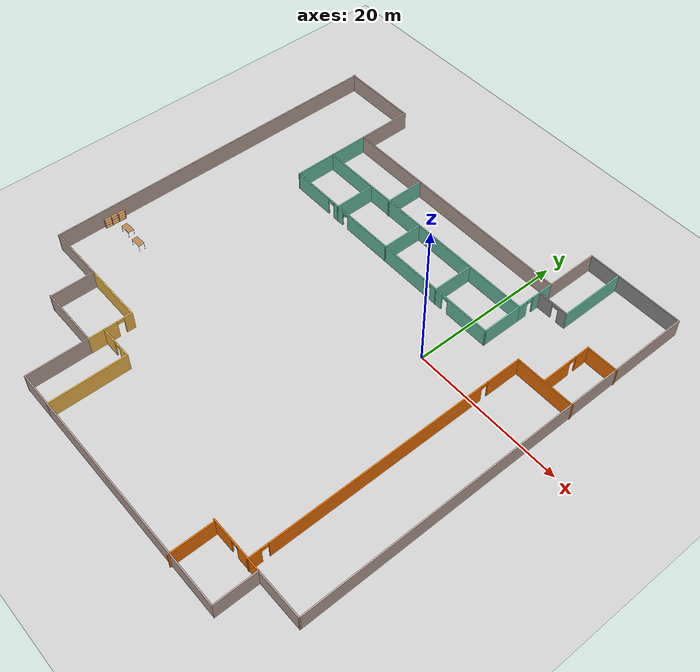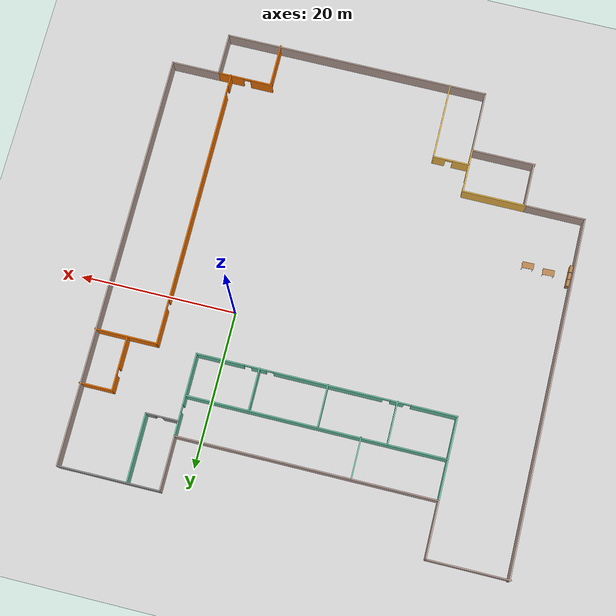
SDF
<sdf version="1.6">
 <world name="default">
  <model name="ground_plane">
   <static>1</static>
   <link name="link">
    <collision name="collision">
     <geometry><plane><normal>0 0 1</normal><size>100 100</size></plane></geometry>
     <surface><friction><ode><mu>100</mu><mu2>50</mu2></ode></friction></surface>
    </collision>
    <visual name="visual">
     <cast_shadows>0</cast_shadows>
     <geometry><plane><normal>0 0 1</normal><size>100 100</size></plane></geometry>
     <material>
      <script><uri>file://media/materials/scripts/gazebo.material</uri><name>Gazebo/Grey</name></script>
     </material>
    </visual>
   </link>
  </model>
  <model name="Building2">
   <pose>-12.0245 -5.6241 0 0 -0 0</pose>
   <link name="Wall_100">
    <collision name="Wall_100_Collision">
     <geometry><box><size>8.23315 0.15 2.5</size></box></geometry>
     <pose>0 0 1.25 0 -0 0</pose>
    </collision>
    <visual name="Wall_100_Visual">
     <pose>0 0 1.25 0 -0 0</pose>
     <geometry><box><size>8.23315 0.15 2.5</size></box></geometry>
     <material>
      <script><uri>file://media/materials/scripts/gazebo.material</uri><name>Gazebo/Grey</name></script>
      <ambient>0.760784 0.662745 0.627451 1</ambient>
     </material>
     <meta><layer>0</layer></meta>
    </visual>
    <pose>-16.2724 -21.6991 0 0 -0 3.14159</pose>
   </link>
   <link name="Wall_101">
    <collision name="Wall_101_Collision">
     <geometry><box><size>5.75 0.15 2.5</size></box></geometry>
     <pose>0 0 1.25 0 -0 0</pose>
    </collision>
    <visual name="Wall_101_Visual">
     <pose>0 0 1.25 0 -0 0</pose>
     <geometry><box><size>5.75 0.15 2.5</size></box></geometry>
     <material>
      <script><uri>file://media/materials/scripts/gazebo.material</uri><name>Gazebo/Grey</name></script>
      <ambient>0.760784 0.662745 0.627451 1</ambient>
     </material>
     <meta><layer>0</layer></meta>
    </visual>
    <pose>-20.2209 -18.8991 0 0 -0 1.5708</pose>
   </link>
   <link name="Wall_102">
    <collision name="Wall_102_Collision">
     <geometry><box><size>7.76685 0.15 2.5</size></box></geometry>
     <pose>0 0 1.25 0 -0 0</pose>
    </collision>
    <visual name="Wall_102_Visual">
     <pose>0 0 1.25 0 -0 0</pose>
     <geometry><box><size>7.76685 0.15 2.5</size></box></geometry>
     <material>
      <script><uri>file://media/materials/scripts/gazebo.material</uri><name>Gazebo/Grey</name></script>
      <ambient>0.760784 0.662745 0.627451 1</ambient>
     </material>
     <meta><layer>0</layer></meta>
    </visual>
    <pose>-24.1224 -16.0991 0 0 -0 3.14159</pose>
   </link>
   <link name="Wall_103">
    <collision name="Wall_103_Collision">
     <geometry><box><size>46 0.15 2.5</size></box></geometry>
     <pose>0 0 1.25 0 -0 0</pose>
    </collision>
    <visual name="Wall_103_Visual">
     <pose>0 0 1.25 0 -0 0</pose>
     <geometry><box><size>46 0.15 2.5</size></box></geometry>
     <material>
      <script><uri>file://media/materials/scripts/gazebo.material</uri><name>Gazebo/Grey</name></script>
      <ambient>0.760784 0.662745 0.627451 1</ambient>
     </material>
     <meta><layer>0</layer></meta>
    </visual>
    <pose>-27.9308 6.82589 0 0 -0 1.5708</pose>
   </link>
   <link name="Wall_105">
    <collision name="Wall_105_Collision">
     <geometry><box><size>5.25 0.15 2.5</size></box></geometry>
     <pose>0 0 1.25 0 -0 0</pose>
    </collision>
    <visual name="Wall_105_Visual">
     <pose>0 0 1.25 0 -0 0</pose>
     <geometry><box><size>5.25 0.15 2.5</size></box></geometry>
     <material>
      <script><uri>file://media/materials/scripts/gazebo.material</uri><name>Gazebo/Grey</name></script>
      <ambient>0.435294 0.796078 0.67451 1</ambient>
     </material>
     <meta><layer>0</layer></meta>
    </visual>
    <pose>-17.7308 20.0009 0 0 0 -1.5708</pose>
   </link>
   <link name="Wall_106">
    <collision name="Wall_106_Collision">
     <geometry><box><size>33 0.15 2.5</size></box></geometry>
     <pose>0 0 1.25 0 -0 0</pose>
    </collision>
    <visual name="Wall_106_Visual">
     <pose>0 0 1.25 0 -0 0</pose>
     <geometry><box><size>33 0.15 2.5</size></box></geometry>
     <material>
      <script><uri>file://media/materials/scripts/gazebo.material</uri><name>Gazebo/Grey</name></script>
      <ambient>0.435294 0.796078 0.67451 1</ambient>
     </material>
     <meta><layer>0</layer></meta>
    </visual>
    <pose>-1.30583 17.4509 0 0 -0 0</pose>
   </link>
   <link name="Wall_107">
    <pose>15.1192 20.0009 0 0 -0 1.5708</pose>
    <visual name="Wall_107_Visual_0">
     <pose>-1.98924 0 1.25 0 -0 0</pose>
     <geometry><box><size>1.27152 0.15 2.5</size></box></geometry>
     <material>
      <script><uri>file://media/materials/scripts/gazebo.material</uri><name>Gazebo/Grey</name></script>
      <ambient>0.435294 0.796078 0.67451 1</ambient>
     </material>
     <meta><layer>0</layer></meta>
    </visual>
    <collision name="Wall_107_Collision_0">
     <geometry><box><size>1.27152 0.15 2.5</size></box></geometry>
     <pose>-1.98924 0 1.25 0 -0 0</pose>
    </collision>
    <visual name="Wall_107_Visual_1">
     <pose>1.08576 0 1.25 0 -0 0</pose>
     <geometry><box><size>3.07848 0.15 2.5</size></box></geometry>
     <material>
      <script><uri>file://media/materials/scripts/gazebo.material</uri><name>Gazebo/Grey</name></script>
      <ambient>0.435294 0.796078 0.67451 1</ambient>
     </material>
     <meta><layer>0</layer></meta>
    </visual>
    <collision name="Wall_107_Collision_1">
     <geometry><box><size>3.07848 0.15 2.5</size></box></geometry>
     <pose>1.08576 0 1.25 0 -0 0</pose>
    </collision>
    <visual name="Wall_107_Visual_2">
     <pose>-0.903477 0 2.25 0 -0 0</pose>
     <geometry><box><size>0.9 0.15 0.5</size></box></geometry>
     <material>
      <script><uri>file://media/materials/scripts/gazebo.material</uri><name>Gazebo/Grey</name></script>
      <ambient>0.435294 0.796078 0.67451 1</ambient>
     </material>
     <meta><layer>0</layer></meta>
    </visual>
    <collision name="Wall_107_Collision_2">
     <geometry><box><size>0.9 0.15 0.5</size></box></geometry>
     <pose>-0.903477 0 2.25 0 -0 0</pose>
    </collision>
   </link>
   <link name="Wall_109">
    <collision name="Wall_109_Collision">
     <geometry><box><size>5.25 0.15 2.5</size></box></geometry>
     <pose>0 0 1.25 0 -0 0</pose>
    </collision>
    <visual name="Wall_109_Visual">
     <pose>0 0 1.25 0 -0 0</pose>
     <geometry><box><size>5.25 0.15 2.5</size></box></geometry>
     <material>
      <script><uri>file://media/materials/scripts/gazebo.material</uri><name>Gazebo/Grey</name></script>
      <ambient>0.435294 0.796078 0.67451 1</ambient>
     </material>
     <meta><layer>0</layer></meta>
    </visual>
    <pose>-6.91313 19.8858 0 0 -0 1.5708</pose>
   </link>
   <link name="Wall_111">
    <collision name="Wall_111_Collision">
     <geometry><box><size>5.5 0.15 2.5</size></box></geometry>
     <pose>0 0 1.25 0 -0 0</pose>
    </collision>
    <visual name="Wall_111_Visual">
     <pose>0 0 1.25 0 -0 0</pose>
     <geometry><box><size>5.5 0.15 2.5</size></box></geometry>
     <material>
      <script><uri>file://media/materials/scripts/gazebo.material</uri><name>Gazebo/Grey</name></script>
      <ambient>0.435294 0.796078 0.67451 1</ambient>
     </material>
     <meta><layer>0</layer></meta>
    </visual>
    <pose>-17.7308 14.7759 0 0 0 -1.5708</pose>
   </link>
   <link name="Wall_112">
    <pose>-1.30583 12.1009 0 0 -0 0</pose>
    <visual name="Wall_112_Visual_0">
     <pose>-13.571 0 1.25 0 -0 0</pose>
     <geometry><box><size>5.8581 0.15 2.5</size></box></geometry>
     <material>
      <script><uri>file://media/materials/scripts/gazebo.material</uri><name>Gazebo/Grey</name></script>
      <ambient>0.435294 0.796078 0.67451 1</ambient>
     </material>
     <meta><layer>0</layer></meta>
    </visual>
    <collision name="Wall_112_Collision_0">
     <geometry><box><size>5.8581 0.15 2.5</size></box></geometry>
     <pose>-13.571 0 1.25 0 -0 0</pose>
    </collision>
    <visual name="Wall_112_Visual_1">
     <pose>-8.87439 0 1.25 0 -0 0</pose>
     <geometry><box><size>1.73501 0.15 2.5</size></box></geometry>
     <material>
      <script><uri>file://media/materials/scripts/gazebo.material</uri><name>Gazebo/Grey</name></script>
      <ambient>0.435294 0.796078 0.67451 1</ambient>
     </material>
     <meta><layer>0</layer></meta>
    </visual>
    <collision name="Wall_112_Collision_1">
     <geometry><box><size>1.73501 0.15 2.5</size></box></geometry>
     <pose>-8.87439 0 1.25 0 -0 0</pose>
    </collision>
    <visual name="Wall_112_Visual_2">
     <pose>-0.216496 0 1.25 0 -0 0</pose>
     <geometry><box><size>13.7808 0.15 2.5</size></box></geometry>
     <material>
      <script><uri>file://media/materials/scripts/gazebo.material</uri><name>Gazebo/Grey</name></script>
      <ambient>0.435294 0.796078 0.67451 1</ambient>
     </material>
     <meta><layer>0</layer></meta>
    </visual>
    <collision name="Wall_112_Collision_2">
     <geometry><box><size>13.7808 0.15 2.5</size></box></geometry>
     <pose>-0.216496 0 1.25 0 -0 0</pose>
    </collision>
    <visual name="Wall_112_Visual_3">
     <pose>8.53551 0 1.25 0 -0 0</pose>
     <geometry><box><size>1.92323 0.15 2.5</size></box></geometry>
     <material>
      <script><uri>file://media/materials/scripts/gazebo.material</uri><name>Gazebo/Grey</name></script>
      <ambient>0.435294 0.796078 0.67451 1</ambient>
     </material>
     <meta><layer>0</layer></meta>
    </visual>
    <collision name="Wall_112_Collision_3">
     <geometry><box><size>1.92323 0.15 2.5</size></box></geometry>
     <pose>8.53551 0 1.25 0 -0 0</pose>
    </collision>
    <visual name="Wall_112_Visual_4">
     <pose>13.4486 0 1.25 0 -0 0</pose>
     <geometry><box><size>6.10288 0.15 2.5</size></box></geometry>
     <material>
      <script><uri>file://media/materials/scripts/gazebo.material</uri><name>Gazebo/Grey</name></script>
      <ambient>0.435294 0.796078 0.67451 1</ambient>
     </material>
     <meta><layer>0</layer></meta>
    </visual>
    <collision name="Wall_112_Collision_4">
     <geometry><box><size>6.10288 0.15 2.5</size></box></geometry>
     <pose>13.4486 0 1.25 0 -0 0</pose>
    </collision>
    <visual name="Wall_112_Visual_5">
     <pose>-10.1919 0 2.25 0 -0 0</pose>
     <geometry><box><size>0.9 0.15 0.5</size></box></geometry>
     <material>
      <script><uri>file://media/materials/scripts/gazebo.material</uri><name>Gazebo/Grey</name></script>
      <ambient>0.435294 0.796078 0.67451 1</ambient>
     </material>
     <meta><layer>0</layer></meta>
    </visual>
    <collision name="Wall_112_Collision_5">
     <geometry><box><size>0.9 0.15 0.5</size></box></geometry>
     <pose>-10.1919 0 2.25 0 -0 0</pose>
    </collision>
    <visual name="Wall_112_Visual_6">
     <pose>-7.55689 0 2.25 0 -0 0</pose>
     <geometry><box><size>0.9 0.15 0.5</size></box></geometry>
     <material>
      <script><uri>file://media/materials/scripts/gazebo.material</uri><name>Gazebo/Grey</name></script>
      <ambient>0.435294 0.796078 0.67451 1</ambient>
     </material>
     <meta><layer>0</layer></meta>
    </visual>
    <collision name="Wall_112_Collision_6">
     <geometry><box><size>0.9 0.15 0.5</size></box></geometry>
     <pose>-7.55689 0 2.25 0 -0 0</pose>
    </collision>
    <visual name="Wall_112_Visual_7">
     <pose>7.1239 0 2.25 0 -0 0</pose>
     <geometry><box><size>0.9 0.15 0.5</size></box></geometry>
     <material>
      <script><uri>file://media/materials/scripts/gazebo.material</uri><name>Gazebo/Grey</name></script>
      <ambient>0.435294 0.796078 0.67451 1</ambient>
     </material>
     <meta><layer>0</layer></meta>
    </visual>
    <collision name="Wall_112_Collision_7">
     <geometry><box><size>0.9 0.15 0.5</size></box></geometry>
     <pose>7.1239 0 2.25 0 -0 0</pose>
    </collision>
    <visual name="Wall_112_Visual_8">
     <pose>9.94712 0 2.25 0 -0 0</pose>
     <geometry><box><size>0.9 0.15 0.5</size></box></geometry>
     <material>
      <script><uri>file://media/materials/scripts/gazebo.material</uri><name>Gazebo/Grey</name></script>
      <ambient>0.435294 0.796078 0.67451 1</ambient>
     </material>
     <meta><layer>0</layer></meta>
    </visual>
    <collision name="Wall_112_Collision_8">
     <geometry><box><size>0.9 0.15 0.5</size></box></geometry>
     <pose>9.94712 0 2.25 0 -0 0</pose>
    </collision>
   </link>
   <link name="Wall_113">
    <collision name="Wall_113_Collision">
     <geometry><box><size>5.5 0.15 2.5</size></box></geometry>
     <pose>0 0 1.25 0 -0 0</pose>
    </collision>
    <visual name="Wall_113_Visual">
     <pose>0 0 1.25 0 -0 0</pose>
     <geometry><box><size>5.5 0.15 2.5</size></box></geometry>
     <material>
      <script><uri>file://media/materials/scripts/gazebo.material</uri><name>Gazebo/Grey</name></script>
      <ambient>0.435294 0.796078 0.67451 1</ambient>
     </material>
     <meta><layer>0</layer></meta>
    </visual>
    <pose>15.1192 14.7759 0 0 -0 1.5708</pose>
   </link>
   <link name="Wall_116">
    <collision name="Wall_116_Collision">
     <geometry><box><size>5.5 0.15 2.5</size></box></geometry>
     <pose>0 0 1.25 0 -0 0</pose>
    </collision>
    <visual name="Wall_116_Visual">
     <pose>0 0 1.25 0 -0 0</pose>
     <geometry><box><size>5.5 0.15 2.5</size></box></geometry>
     <material>
      <script><uri>file://media/materials/scripts/gazebo.material</uri><name>Gazebo/Grey</name></script>
      <ambient>0.435294 0.796078 0.67451 1</ambient>
     </material>
     <meta><layer>0</layer></meta>
    </visual>
    <pose>7.15837 14.734 0 0 -0 1.5708</pose>
   </link>
   <link name="Wall_118">
    <collision name="Wall_118_Collision">
     <geometry><box><size>5.5 0.15 2.5</size></box></geometry>
     <pose>0 0 1.25 0 -0 0</pose>
    </collision>
    <visual name="Wall_118_Visual">
     <pose>0 0 1.25 0 -0 0</pose>
     <geometry><box><size>5.5 0.15 2.5</size></box></geometry>
     <material>
      <script><uri>file://media/materials/scripts/gazebo.material</uri><name>Gazebo/Grey</name></script>
      <ambient>0.435294 0.796078 0.67451 1</ambient>
     </material>
     <meta><layer>0</layer></meta>
    </visual>
    <pose>-1.4956 14.734 0 0 -0 1.5708</pose>
   </link>
   <link name="Wall_120">
    <collision name="Wall_120_Collision">
     <geometry><box><size>5.5 0.15 2.5</size></box></geometry>
     <pose>0 0 1.25 0 -0 0</pose>
    </collision>
    <visual name="Wall_120_Visual">
     <pose>0 0 1.25 0 -0 0</pose>
     <geometry><box><size>5.5 0.15 2.5</size></box></geometry>
     <material>
      <script><uri>file://media/materials/scripts/gazebo.material</uri><name>Gazebo/Grey</name></script>
      <ambient>0.435294 0.796078 0.67451 1</ambient>
     </material>
     <meta><layer>0</layer></meta>
    </visual>
    <pose>-10.2199 14.734 0 0 -0 1.5708</pose>
   </link>
   <link name="Wall_124">
    <collision name="Wall_124_Collision">
     <geometry><box><size>8.25 0.15 2.5</size></box></geometry>
     <pose>0 0 1.25 0 -0 0</pose>
    </collision>
    <visual name="Wall_124_Visual">
     <pose>0 0 1.25 0 -0 0</pose>
     <geometry><box><size>8.25 0.15 2.5</size></box></geometry>
     <material>
      <script><uri>file://media/materials/scripts/gazebo.material</uri><name>Gazebo/Grey</name></script>
      <ambient>1 0.764706 0.305882 1</ambient>
     </material>
     <meta><layer>0</layer></meta>
    </visual>
    <pose>-16.264 -16.0991 0 0 -0 0</pose>
   </link>
   <link name="Wall_125">
    <pose>-12.214 -18.8991 0 0 0 -1.5708</pose>
    <visual name="Wall_125_Visual_0">
     <pose>-2.30978 0 1.25 0 -0 0</pose>
     <geometry><box><size>1.13044 0.15 2.5</size></box></geometry>
     <material>
      <script><uri>file://media/materials/scripts/gazebo.material</uri><name>Gazebo/Grey</name></script>
      <ambient>1 0.764706 0.305882 1</ambient>
     </material>
     <meta><layer>0</layer></meta>
    </visual>
    <collision name="Wall_125_Collision_0">
     <geometry><box><size>1.13044 0.15 2.5</size></box></geometry>
     <pose>-2.30978 0 1.25 0 -0 0</pose>
    </collision>
    <visual name="Wall_125_Visual_1">
     <pose>1.01522 0 1.25 0 -0 0</pose>
     <geometry><box><size>3.71956 0.15 2.5</size></box></geometry>
     <material>
      <script><uri>file://media/materials/scripts/gazebo.material</uri><name>Gazebo/Grey</name></script>
      <ambient>1 0.764706 0.305882 1</ambient>
     </material>
     <meta><layer>0</layer></meta>
    </visual>
    <collision name="Wall_125_Collision_1">
     <geometry><box><size>3.71956 0.15 2.5</size></box></geometry>
     <pose>1.01522 0 1.25 0 -0 0</pose>
    </collision>
    <visual name="Wall_125_Visual_2">
     <pose>-1.29456 0 2.25 0 -0 0</pose>
     <geometry><box><size>0.9 0.15 0.5</size></box></geometry>
     <material>
      <script><uri>file://media/materials/scripts/gazebo.material</uri><name>Gazebo/Grey</name></script>
      <ambient>1 0.764706 0.305882 1</ambient>
     </material>
     <meta><layer>0</layer></meta>
    </visual>
    <collision name="Wall_125_Collision_2">
     <geometry><box><size>0.9 0.15 0.5</size></box></geometry>
     <pose>-1.29456 0 2.25 0 -0 0</pose>
    </collision>
   </link>
   <link name="Wall_127">
    <pose>-9.89301 -19.7017 0 0 -0 0</pose>
    <visual name="Wall_127_Visual_0">
     <pose>-1.27379 0 1.25 0 -0 0</pose>
     <geometry><box><size>2.20243 0.15 2.5</size></box></geometry>
     <material>
      <script><uri>file://media/materials/scripts/gazebo.material</uri><name>Gazebo/Grey</name></script>
      <ambient>1 0.764706 0.305882 1</ambient>
     </material>
     <meta><layer>0</layer></meta>
    </visual>
    <collision name="Wall_127_Collision_0">
     <geometry><box><size>2.20243 0.15 2.5</size></box></geometry>
     <pose>-1.27379 0 1.25 0 -0 0</pose>
    </collision>
    <visual name="Wall_127_Visual_1">
     <pose>1.55121 0 1.25 0 -0 0</pose>
     <geometry><box><size>1.64757 0.15 2.5</size></box></geometry>
     <material>
      <script><uri>file://media/materials/scripts/gazebo.material</uri><name>Gazebo/Grey</name></script>
      <ambient>1 0.764706 0.305882 1</ambient>
     </material>
     <meta><layer>0</layer></meta>
    </visual>
    <collision name="Wall_127_Collision_1">
     <geometry><box><size>1.64757 0.15 2.5</size></box></geometry>
     <pose>1.55121 0 1.25 0 -0 0</pose>
    </collision>
    <visual name="Wall_127_Visual_2">
     <pose>0.277428 0 2.25 0 -0 0</pose>
     <geometry><box><size>0.9 0.15 0.5</size></box></geometry>
     <material>
      <script><uri>file://media/materials/scripts/gazebo.material</uri><name>Gazebo/Grey</name></script>
      <ambient>1 0.764706 0.305882 1</ambient>
     </material>
     <meta><layer>0</layer></meta>
    </visual>
    <collision name="Wall_127_Collision_2">
     <geometry><box><size>0.9 0.15 0.5</size></box></geometry>
     <pose>0.277428 0 2.25 0 -0 0</pose>
    </collision>
   </link>
   <link name="Wall_128">
    <collision name="Wall_128_Collision">
     <geometry><box><size>10 0.15 2.5</size></box></geometry>
     <pose>0 0 1.25 0 -0 0</pose>
    </collision>
    <visual name="Wall_128_Visual">
     <pose>0 0 1.25 0 -0 0</pose>
     <geometry><box><size>10 0.15 2.5</size></box></geometry>
     <material>
      <script><uri>file://media/materials/scripts/gazebo.material</uri><name>Gazebo/Grey</name></script>
      <ambient>1 0.764706 0.305882 1</ambient>
     </material>
     <meta><layer>0</layer></meta>
    </visual>
    <pose>-7.59301 -24.6267 0 0 0 -1.5708</pose>
   </link>
   <link name="Wall_130">
    <collision name="Wall_130_Collision">
     <geometry><box><size>5.5 0.15 2.5</size></box></geometry>
     <pose>0 0 1.25 0 -0 0</pose>
    </collision>
    <visual name="Wall_130_Visual">
     <pose>0 0 1.25 0 -0 0</pose>
     <geometry><box><size>5.5 0.15 2.5</size></box></geometry>
     <material>
      <script><uri>file://media/materials/scripts/gazebo.material</uri><name>Gazebo/Grey</name></script>
      <ambient>0.996078 0.47451 0.0196078 1</ambient>
     </material>
     <meta><layer>0</layer></meta>
    </visual>
    <pose>14.977 -27.0759 0 0 -0 1.5708</pose>
   </link>
   <link name="Wall_133">
    <pose>18.3192 -24.1991 0 0 -0 3.14159</pose>
    <visual name="Wall_133_Visual_0">
     <pose>-1.90394 0 1.25 0 -0 0</pose>
     <geometry><box><size>3.44212 0.15 2.5</size></box></geometry>
     <material>
      <script><uri>file://media/materials/scripts/gazebo.material</uri><name>Gazebo/Grey</name></script>
      <ambient>0.996078 0.47451 0.0196078 1</ambient>
     </material>
     <meta><layer>0</layer></meta>
    </visual>
    <collision name="Wall_133_Collision_0">
     <geometry><box><size>3.44212 0.15 2.5</size></box></geometry>
     <pose>-1.90394 0 1.25 0 -0 0</pose>
    </collision>
    <visual name="Wall_133_Visual_1">
     <pose>2.17106 0 1.25 0 -0 0</pose>
     <geometry><box><size>2.90788 0.15 2.5</size></box></geometry>
     <material>
      <script><uri>file://media/materials/scripts/gazebo.material</uri><name>Gazebo/Grey</name></script>
      <ambient>0.996078 0.47451 0.0196078 1</ambient>
     </material>
     <meta><layer>0</layer></meta>
    </visual>
    <collision name="Wall_133_Collision_1">
     <geometry><box><size>2.90788 0.15 2.5</size></box></geometry>
     <pose>2.17106 0 1.25 0 -0 0</pose>
    </collision>
    <visual name="Wall_133_Visual_2">
     <pose>0.267118 0 2.25 0 -0 0</pose>
     <geometry><box><size>0.9 0.15 0.5</size></box></geometry>
     <material>
      <script><uri>file://media/materials/scripts/gazebo.material</uri><name>Gazebo/Grey</name></script>
      <ambient>0.996078 0.47451 0.0196078 1</ambient>
     </material>
     <meta><layer>0</layer></meta>
    </visual>
    <collision name="Wall_133_Collision_2">
     <geometry><box><size>0.9 0.15 0.5</size></box></geometry>
     <pose>0.267118 0 2.25 0 -0 0</pose>
    </collision>
   </link>
   <link name="Wall_135">
    <pose>20.2165 -6.11119 0 0 -0 1.5708</pose>
    <visual name="Wall_135_Visual_0">
     <pose>-17.4023 0 1.25 0 -0 0</pose>
     <geometry><box><size>1.69537 0.15 2.5</size></box></geometry>
     <material>
      <script><uri>file://media/materials/scripts/gazebo.material</uri><name>Gazebo/Grey</name></script>
      <ambient>0.996078 0.47451 0.0196078 1</ambient>
     </material>
     <meta><layer>0</layer></meta>
    </visual>
    <collision name="Wall_135_Collision_0">
     <geometry><box><size>1.69537 0.15 2.5</size></box></geometry>
     <pose>-17.4023 0 1.25 0 -0 0</pose>
    </collision>
    <visual name="Wall_135_Visual_1">
     <pose>-1.51796 0 1.25 0 -0 0</pose>
     <geometry><box><size>28.2734 0.15 2.5</size></box></geometry>
     <material>
      <script><uri>file://media/materials/scripts/gazebo.material</uri><name>Gazebo/Grey</name></script>
      <ambient>0.996078 0.47451 0.0196078 1</ambient>
     </material>
     <meta><layer>0</layer></meta>
    </visual>
    <collision name="Wall_135_Collision_1">
     <geometry><box><size>28.2734 0.15 2.5</size></box></geometry>
     <pose>-1.51796 0 1.25 0 -0 0</pose>
    </collision>
    <visual name="Wall_135_Visual_2">
     <pose>15.8844 0 1.25 0 -0 0</pose>
     <geometry><box><size>4.73128 0.15 2.5</size></box></geometry>
     <material>
      <script><uri>file://media/materials/scripts/gazebo.material</uri><name>Gazebo/Grey</name></script>
      <ambient>0.996078 0.47451 0.0196078 1</ambient>
     </material>
     <meta><layer>0</layer></meta>
    </visual>
    <collision name="Wall_135_Collision_2">
     <geometry><box><size>4.73128 0.15 2.5</size></box></geometry>
     <pose>15.8844 0 1.25 0 -0 0</pose>
    </collision>
    <visual name="Wall_135_Visual_3">
     <pose>-16.1046 0 2.25 0 -0 0</pose>
     <geometry><box><size>0.9 0.15 0.5</size></box></geometry>
     <material>
      <script><uri>file://media/materials/scripts/gazebo.material</uri><name>Gazebo/Grey</name></script>
      <ambient>0.996078 0.47451 0.0196078 1</ambient>
     </material>
     <meta><layer>0</layer></meta>
    </visual>
    <collision name="Wall_135_Collision_3">
     <geometry><box><size>0.9 0.15 0.5</size></box></geometry>
     <pose>-16.1046 0 2.25 0 -0 0</pose>
    </collision>
    <visual name="Wall_135_Visual_4">
     <pose>13.0687 0 2.25 0 -0 0</pose>
     <geometry><box><size>0.9 0.15 0.5</size></box></geometry>
     <material>
      <script><uri>file://media/materials/scripts/gazebo.material</uri><name>Gazebo/Grey</name></script>
      <ambient>0.996078 0.47451 0.0196078 1</ambient>
     </material>
     <meta><layer>0</layer></meta>
    </visual>
    <collision name="Wall_135_Collision_4">
     <geometry><box><size>0.9 0.15 0.5</size></box></geometry>
     <pose>13.0687 0 2.25 0 -0 0</pose>
    </collision>
   </link>
   <link name="Wall_136">
    <collision name="Wall_136_Collision">
     <geometry><box><size>8 0.15 2.5</size></box></geometry>
     <pose>0 0 1.25 0 -0 0</pose>
    </collision>
    <visual name="Wall_136_Visual">
     <pose>0 0 1.25 0 -0 0</pose>
     <geometry><box><size>8 0.15 2.5</size></box></geometry>
     <material>
      <script><uri>file://media/materials/scripts/gazebo.material</uri><name>Gazebo/Grey</name></script>
      <ambient>0.996078 0.47451 0.0196078 1</ambient>
     </material>
     <meta><layer>0</layer></meta>
    </visual>
    <pose>24.1415 12.0638 0 0 -0 0</pose>
   </link>
   <link name="Wall_138">
    <pose>23.9808 15.5584 0 0 -0 1.5708</pose>
    <visual name="Wall_138_Visual_0">
     <pose>-1.47597 0 1.25 0 -0 0</pose>
     <geometry><box><size>4.04806 0.15 2.5</size></box></geometry>
     <material>
      <script><uri>file://media/materials/scripts/gazebo.material</uri><name>Gazebo/Grey</name></script>
      <ambient>0.996078 0.47451 0.0196078 1</ambient>
     </material>
     <meta><layer>0</layer></meta>
    </visual>
    <collision name="Wall_138_Collision_0">
     <geometry><box><size>4.04806 0.15 2.5</size></box></geometry>
     <pose>-1.47597 0 1.25 0 -0 0</pose>
    </collision>
    <visual name="Wall_138_Visual_1">
     <pose>2.47403 0 1.25 0 -0 0</pose>
     <geometry><box><size>2.05194 0.15 2.5</size></box></geometry>
     <material>
      <script><uri>file://media/materials/scripts/gazebo.material</uri><name>Gazebo/Grey</name></script>
      <ambient>0.996078 0.47451 0.0196078 1</ambient>
     </material>
     <meta><layer>0</layer></meta>
    </visual>
    <collision name="Wall_138_Collision_1">
     <geometry><box><size>2.05194 0.15 2.5</size></box></geometry>
     <pose>2.47403 0 1.25 0 -0 0</pose>
    </collision>
    <visual name="Wall_138_Visual_2">
     <pose>0.998056 0 2.25 0 -0 0</pose>
     <geometry><box><size>0.9 0.15 0.5</size></box></geometry>
     <material>
      <script><uri>file://media/materials/scripts/gazebo.material</uri><name>Gazebo/Grey</name></script>
      <ambient>0.996078 0.47451 0.0196078 1</ambient>
     </material>
     <meta><layer>0</layer></meta>
    </visual>
    <collision name="Wall_138_Collision_2">
     <geometry><box><size>0.9 0.15 0.5</size></box></geometry>
     <pose>0.998056 0 2.25 0 -0 0</pose>
    </collision>
   </link>
   <link name="Wall_139">
    <collision name="Wall_139_Collision">
     <geometry><box><size>4.25 0.15 2.5</size></box></geometry>
     <pose>0 0 1.25 0 -0 0</pose>
    </collision>
    <visual name="Wall_139_Visual">
     <pose>0 0 1.25 0 -0 0</pose>
     <geometry><box><size>4.25 0.15 2.5</size></box></geometry>
     <material>
      <script><uri>file://media/materials/scripts/gazebo.material</uri><name>Gazebo/Grey</name></script>
      <ambient>0.996078 0.47451 0.0196078 1</ambient>
     </material>
     <meta><layer>0</layer></meta>
    </visual>
    <pose>26.0308 18.9834 0 0 -0 0</pose>
   </link>
   <link name="Wall_141">
    <pose>17.1847 20.6972 0 0 -0 0</pose>
    <visual name="Wall_141_Visual_0">
     <pose>-1.0891 0 1.25 0 -0 0</pose>
     <geometry><box><size>2.0718 0.15 2.5</size></box></geometry>
     <material>
      <script><uri>file://media/materials/scripts/gazebo.material</uri><name>Gazebo/Grey</name></script>
      <ambient>1 1 1 1</ambient>
     </material>
     <meta><layer>0</layer></meta>
    </visual>
    <collision name="Wall_141_Collision_0">
     <geometry><box><size>2.0718 0.15 2.5</size></box></geometry>
     <pose>-1.0891 0 1.25 0 -0 0</pose>
    </collision>
    <visual name="Wall_141_Visual_1">
     <pose>1.4859 0 1.25 0 -0 0</pose>
     <geometry><box><size>1.2782 0.15 2.5</size></box></geometry>
     <material>
      <script><uri>file://media/materials/scripts/gazebo.material</uri><name>Gazebo/Grey</name></script>
      <ambient>1 1 1 1</ambient>
     </material>
     <meta><layer>0</layer></meta>
    </visual>
    <collision name="Wall_141_Collision_1">
     <geometry><box><size>1.2782 0.15 2.5</size></box></geometry>
     <pose>1.4859 0 1.25 0 -0 0</pose>
    </collision>
    <visual name="Wall_141_Visual_2">
     <pose>0.396797 0 2.25 0 -0 0</pose>
     <geometry><box><size>0.9 0.15 0.5</size></box></geometry>
     <material>
      <script><uri>file://media/materials/scripts/gazebo.material</uri><name>Gazebo/Grey</name></script>
      <ambient>1 1 1 1</ambient>
     </material>
     <meta><layer>0</layer></meta>
    </visual>
    <collision name="Wall_141_Collision_2">
     <geometry><box><size>0.9 0.15 0.5</size></box></geometry>
     <pose>0.396797 0 2.25 0 -0 0</pose>
    </collision>
   </link>
   <link name="Wall_142">
    <collision name="Wall_142_Collision">
     <geometry><box><size>8.75 0.15 2.5</size></box></geometry>
     <pose>0 0 1.25 0 -0 0</pose>
    </collision>
    <visual name="Wall_142_Visual">
     <pose>0 0 1.25 0 -0 0</pose>
     <geometry><box><size>8.75 0.15 2.5</size></box></geometry>
     <material>
      <script><uri>file://media/materials/scripts/gazebo.material</uri><name>Gazebo/Grey</name></script>
      <ambient>0.435294 0.796078 0.67451 1</ambient>
     </material>
     <meta><layer>0</layer></meta>
    </visual>
    <pose>19.2347 24.9972 0 0 -0 1.5708</pose>
   </link>
   <link name="Wall_87">
    <collision name="Wall_87_Collision">
     <geometry><box><size>10.5 0.15 2.5</size></box></geometry>
     <pose>0 0 1.25 0 -0 0</pose>
    </collision>
    <visual name="Wall_87_Visual">
     <pose>0 0 1.25 0 -0 0</pose>
     <geometry><box><size>10.5 0.15 2.5</size></box></geometry>
     <material>
      <script><uri>file://media/materials/scripts/gazebo.material</uri><name>Gazebo/Grey</name></script>
      <ambient>0.760784 0.662745 0.627451 1</ambient>
     </material>
     <meta><layer>0</layer></meta>
    </visual>
    <pose>-22.9058 29.6509 0 0 -0 0</pose>
   </link>
   <link name="Wall_91">
    <collision name="Wall_91_Collision">
     <geometry><box><size>7.25 0.15 2.5</size></box></geometry>
     <pose>0 0 1.25 0 -0 0</pose>
    </collision>
    <visual name="Wall_91_Visual">
     <pose>0 0 1.25 0 -0 0</pose>
     <geometry><box><size>7.25 0.15 2.5</size></box></geometry>
     <material>
      <script><uri>file://media/materials/scripts/gazebo.material</uri><name>Gazebo/Grey</name></script>
      <ambient>0.760784 0.662745 0.627451 1</ambient>
     </material>
     <meta><layer>0</layer></meta>
    </visual>
    <pose>-17.7308 26.1009 0 0 0 -1.5708</pose>
   </link>
   <link name="Wall_92">
    <collision name="Wall_92_Collision">
     <geometry><box><size>33 0.15 2.5</size></box></geometry>
     <pose>0 0 1.25 0 -0 0</pose>
    </collision>
    <visual name="Wall_92_Visual">
     <pose>0 0 1.25 0 -0 0</pose>
     <geometry><box><size>33 0.15 2.5</size></box></geometry>
     <material>
      <script><uri>file://media/materials/scripts/gazebo.material</uri><name>Gazebo/Grey</name></script>
      <ambient>0.760784 0.662745 0.627451 1</ambient>
     </material>
     <meta><layer>0</layer></meta>
    </visual>
    <pose>-1.30583 22.5509 0 0 -0 0</pose>
   </link>
   <link name="Wall_93">
    <collision name="Wall_93_Collision">
     <geometry><box><size>7 0.15 2.5</size></box></geometry>
     <pose>0 0 1.25 0 -0 0</pose>
    </collision>
    <visual name="Wall_93_Visual">
     <pose>0 0 1.25 0 -0 0</pose>
     <geometry><box><size>7 0.15 2.5</size></box></geometry>
     <material>
      <script><uri>file://media/materials/scripts/gazebo.material</uri><name>Gazebo/Grey</name></script>
      <ambient>0.760784 0.662745 0.627451 1</ambient>
     </material>
     <meta><layer>0</layer></meta>
    </visual>
    <pose>15.1192 25.9759 0 0 -0 1.5708</pose>
   </link>
   <link name="Wall_94">
    <collision name="Wall_94_Collision">
     <geometry><box><size>13 0.15 2.5</size></box></geometry>
     <pose>0 0 1.25 0 -0 0</pose>
    </collision>
    <visual name="Wall_94_Visual">
     <pose>0 0 1.25 0 -0 0</pose>
     <geometry><box><size>13 0.15 2.5</size></box></geometry>
     <material>
      <script><uri>file://media/materials/scripts/gazebo.material</uri><name>Gazebo/Grey</name></script>
      <ambient>1 1 1 1</ambient>
     </material>
     <meta><layer>0</layer></meta>
    </visual>
    <pose>21.5442 29.4009 0 0 -0 0</pose>
   </link>
   <link name="Wall_95">
    <collision name="Wall_95_Collision">
     <geometry><box><size>53.75 0.15 2.5</size></box></geometry>
     <pose>0 0 1.25 0 -0 0</pose>
    </collision>
    <visual name="Wall_95_Visual">
     <pose>0 0 1.25 0 -0 0</pose>
     <geometry><box><size>53.75 0.15 2.5</size></box></geometry>
     <material>
      <script><uri>file://media/materials/scripts/gazebo.material</uri><name>Gazebo/Grey</name></script>
      <ambient>0.760784 0.662745 0.627451 1</ambient>
     </material>
     <meta><layer>0</layer></meta>
    </visual>
    <pose>27.9692 2.60089 0 0 0 -1.5708</pose>
   </link>
   <link name="Wall_96">
    <collision name="Wall_96_Collision">
     <geometry><box><size>6.25 0.15 2.5</size></box></geometry>
     <pose>0 0 1.25 0 -0 0</pose>
    </collision>
    <visual name="Wall_96_Visual">
     <pose>0 0 1.25 0 -0 0</pose>
     <geometry><box><size>6.25 0.15 2.5</size></box></geometry>
     <material>
      <script><uri>file://media/materials/scripts/gazebo.material</uri><name>Gazebo/Grey</name></script>
      <ambient>0.760784 0.662745 0.627451 1</ambient>
     </material>
     <meta><layer>0</layer></meta>
    </visual>
    <pose>24.9192 -24.1991 0 0 -0 3.14159</pose>
   </link>
   <link name="Wall_97">
    <collision name="Wall_97_Collision">
     <geometry><box><size>5.5 0.15 2.5</size></box></geometry>
     <pose>0 0 1.25 0 -0 0</pose>
    </collision>
    <visual name="Wall_97_Visual">
     <pose>0 0 1.25 0 -0 0</pose>
     <geometry><box><size>5.5 0.15 2.5</size></box></geometry>
     <material>
      <script><uri>file://media/materials/scripts/gazebo.material</uri><name>Gazebo/Grey</name></script>
      <ambient>0.760784 0.662745 0.627451 1</ambient>
     </material>
     <meta><layer>0</layer></meta>
    </visual>
    <pose>21.8692 -26.8741 0 0 0 -1.5708</pose>
   </link>
   <link name="Wall_98">
    <collision name="Wall_98_Collision">
     <geometry><box><size>34.25 0.15 2.5</size></box></geometry>
     <pose>0 0 1.25 0 -0 0</pose>
    </collision>
    <visual name="Wall_98_Visual">
     <pose>0 0 1.25 0 -0 0</pose>
     <geometry><box><size>34.25 0.15 2.5</size></box></geometry>
     <material>
      <script><uri>file://media/materials/scripts/gazebo.material</uri><name>Gazebo/Grey</name></script>
      <ambient>0.760784 0.662745 0.627451 1</ambient>
     </material>
     <meta><layer>0</layer></meta>
    </visual>
    <pose>4.81917 -29.5491 0 0 -0 3.14159</pose>
   </link>
   <link name="Wall_99">
    <collision name="Wall_99_Collision">
     <geometry><box><size>8 0.15 2.5</size></box></geometry>
     <pose>0 0 1.25 0 -0 0</pose>
    </collision>
    <visual name="Wall_99_Visual">
     <pose>0 0 1.25 0 -0 0</pose>
     <geometry><box><size>8 0.15 2.5</size></box></geometry>
     <material>
      <script><uri>file://media/materials/scripts/gazebo.material</uri><name>Gazebo/Grey</name></script>
      <ambient>0.760784 0.662745 0.627451 1</ambient>
     </material>
     <meta><layer>0</layer></meta>
    </visual>
    <pose>-12.2308 -25.6241 0 0 -0 1.5708</pose>
   </link>
   <static>1</static>
  </model>
  <model name="bookshelf">
   <static>1</static>
   <link name="link">
    <inertial><mass>1</mass></inertial>
    <collision name="back">
     <pose>0 0.005 0.6 0 -0 0</pose>
     <geometry><box><size>0.9 0.01 1.2</size></box></geometry>
    </collision>
    <visual name="visual1">
     <pose>0 0.005 0.6 0 -0 0</pose>
     <geometry><box><size>0.9 0.01 1.2</size></box></geometry>
     <material>
      <script><uri>file://media/materials/scripts/gazebo.material</uri><name>Gazebo/Wood</name></script>
     </material>
    </visual>
    <collision name="left_side">
     <pose>0.45 -0.195 0.6 0 -0 0</pose>
     <geometry><box><size>0.02 0.4 1.2</size></box></geometry>
    </collision>
    <visual name="visual2">
     <pose>0.45 -0.195 0.6 0 -0 0</pose>
     <geometry><box><size>0.02 0.4 1.2</size></box></geometry>
     <material>
      <script><uri>file://media/materials/scripts/gazebo.material</uri><name>Gazebo/Wood</name></script>
     </material>
    </visual>
    <collision name="right_side">
     <pose>-0.45 -0.195 0.6 0 -0 0</pose>
     <geometry><box><size>0.02 0.4 1.2</size></box></geometry>
    </collision>
    <visual name="visual3">
     <pose>-0.45 -0.195 0.6 0 -0 0</pose>
     <geometry><box><size>0.02 0.4 1.2</size></box></geometry>
     <material>
      <script><uri>file://media/materials/scripts/gazebo.material</uri><name>Gazebo/Wood</name></script>
     </material>
    </visual>
    <collision name="bottom">
     <pose>0 -0.195 0.03 0 -0 0</pose>
     <geometry><box><size>0.88 0.4 0.06</size></box></geometry>
    </collision>
    <visual name="visual4">
     <pose>0 -0.195 0.03 0 -0 0</pose>
     <geometry><box><size>0.88 0.4 0.06</size></box></geometry>
     <material>
      <script><uri>file://media/materials/scripts/gazebo.material</uri><name>Gazebo/Wood</name></script>
     </material>
    </visual>
    <collision name="top">
     <pose>0 -0.195 1.19 0 -0 0</pose>
     <geometry><box><size>0.88 0.4 0.02</size></box></geometry>
    </collision>
    <visual name="visual5">
     <pose>0 -0.195 1.19 0 -0 0</pose>
     <geometry><box><size>0.88 0.4 0.02</size></box></geometry>
     <material>
      <script><uri>file://media/materials/scripts/gazebo.material</uri><name>Gazebo/Wood</name></script>
     </material>
    </visual>
    <collision name="low_shelf">
     <pose>0 -0.195 0.43 0 -0 0</pose>
     <geometry><box><size>0.88 0.4 0.02</size></box></geometry>
    </collision>
    <visual name="visual6">
     <pose>0 -0.195 0.43 0 -0 0</pose>
     <geometry><box><size>0.88 0.4 0.02</size></box></geometry>
     <material>
      <script><uri>file://media/materials/scripts/gazebo.material</uri><name>Gazebo/Wood</name></script>
     </material>
    </visual>
    <collision name="high_shelf">
     <pose>0 -0.195 0.8 0 -0 0</pose>
     <geometry><box><size>0.88 0.4 0.02</size></box></geometry>
    </collision>
    <visual name="visual7">
     <pose>0 -0.195 0.8 0 -0 0</pose>
     <geometry><box><size>0.88 0.4 0.02</size></box></geometry>
     <material>
      <script><uri>file://media/materials/scripts/gazebo.material</uri><name>Gazebo/Wood</name></script>
     </material>
    </visual>
   </link>
   <pose>-39.8478 -13.509 0 0 -0 1.53332</pose>
  </model>
  <model name="bookshelf_clone">
   <static>1</static>
   <link name="link">
    <inertial><mass>1</mass></inertial>
    <collision name="back">
     <pose>0 0.005 0.6 0 -0 0</pose>
     <geometry><box><size>0.9 0.01 1.2</size></box></geometry>
    </collision>
    <visual name="visual1">
     <pose>0 0.005 0.6 0 -0 0</pose>
     <geometry><box><size>0.9 0.01 1.2</size></box></geometry>
     <material>
      <script><uri>file://media/materials/scripts/gazebo.material</uri><name>Gazebo/Wood</name></script>
     </material>
    </visual>
    <collision name="left_side">
     <pose>0.45 -0.195 0.6 0 -0 0</pose>
     <geometry><box><size>0.02 0.4 1.2</size></box></geometry>
    </collision>
    <visual name="visual2">
     <pose>0.45 -0.195 0.6 0 -0 0</pose>
     <geometry><box><size>0.02 0.4 1.2</size></box></geometry>
     <material>
      <script><uri>file://media/materials/scripts/gazebo.material</uri><name>Gazebo/Wood</name></script>
     </material>
    </visual>
    <collision name="right_side">
     <pose>-0.45 -0.195 0.6 0 -0 0</pose>
     <geometry><box><size>0.02 0.4 1.2</size></box></geometry>
    </collision>
    <visual name="visual3">
     <pose>-0.45 -0.195 0.6 0 -0 0</pose>
     <geometry><box><size>0.02 0.4 1.2</size></box></geometry>
     <material>
      <script><uri>file://media/materials/scripts/gazebo.material</uri><name>Gazebo/Wood</name></script>
     </material>
    </visual>
    <collision name="bottom">
     <pose>0 -0.195 0.03 0 -0 0</pose>
     <geometry><box><size>0.88 0.4 0.06</size></box></geometry>
    </collision>
    <visual name="visual4">
     <pose>0 -0.195 0.03 0 -0 0</pose>
     <geometry><box><size>0.88 0.4 0.06</size></box></geometry>
     <material>
      <script><uri>file://media/materials/scripts/gazebo.material</uri><name>Gazebo/Wood</name></script>
     </material>
    </visual>
    <collision name="top">
     <pose>0 -0.195 1.19 0 -0 0</pose>
     <geometry><box><size>0.88 0.4 0.02</size></box></geometry>
    </collision>
    <visual name="visual5">
     <pose>0 -0.195 1.19 0 -0 0</pose>
     <geometry><box><size>0.88 0.4 0.02</size></box></geometry>
     <material>
      <script><uri>file://media/materials/scripts/gazebo.material</uri><name>Gazebo/Wood</name></script>
     </material>
    </visual>
    <collision name="low_shelf">
     <pose>0 -0.195 0.43 0 -0 0</pose>
     <geometry><box><size>0.88 0.4 0.02</size></box></geometry>
    </collision>
    <visual name="visual6">
     <pose>0 -0.195 0.43 0 -0 0</pose>
     <geometry><box><size>0.88 0.4 0.02</size></box></geometry>
     <material>
      <script><uri>file://media/materials/scripts/gazebo.material</uri><name>Gazebo/Wood</name></script>
     </material>
    </visual>
    <collision name="high_shelf">
     <pose>0 -0.195 0.8 0 -0 0</pose>
     <geometry><box><size>0.88 0.4 0.02</size></box></geometry>
    </collision>
    <visual name="visual7">
     <pose>0 -0.195 0.8 0 -0 0</pose>
     <geometry><box><size>0.88 0.4 0.02</size></box></geometry>
     <material>
      <script><uri>file://media/materials/scripts/gazebo.material</uri><name>Gazebo/Wood</name></script>
     </material>
    </visual>
   </link>
   <pose>-39.8667 -14.436 0 0 -0 1.53332</pose>
  </model>
  <model name="bookshelf_clone_0">
   <static>1</static>
   <link name="link">
    <inertial><mass>1</mass></inertial>
    <collision name="back">
     <pose>0 0.005 0.6 0 -0 0</pose>
     <geometry><box><size>0.9 0.01 1.2</size></box></geometry>
    </collision>
    <visual name="visual1">
     <pose>0 0.005 0.6 0 -0 0</pose>
     <geometry><box><size>0.9 0.01 1.2</size></box></geometry>
     <material>
      <script><uri>file://media/materials/scripts/gazebo.material</uri><name>Gazebo/Wood</name></script>
     </material>
    </visual>
    <collision name="left_side">
     <pose>0.45 -0.195 0.6 0 -0 0</pose>
     <geometry><box><size>0.02 0.4 1.2</size></box></geometry>
    </collision>
    <visual name="visual2">
     <pose>0.45 -0.195 0.6 0 -0 0</pose>
     <geometry><box><size>0.02 0.4 1.2</size></box></geometry>
     <material>
      <script><uri>file://media/materials/scripts/gazebo.material</uri><name>Gazebo/Wood</name></script>
     </material>
    </visual>
    <collision name="right_side">
     <pose>-0.45 -0.195 0.6 0 -0 0</pose>
     <geometry><box><size>0.02 0.4 1.2</size></box></geometry>
    </collision>
    <visual name="visual3">
     <pose>-0.45 -0.195 0.6 0 -0 0</pose>
     <geometry><box><size>0.02 0.4 1.2</size></box></geometry>
     <material>
      <script><uri>file://media/materials/scripts/gazebo.material</uri><name>Gazebo/Wood</name></script>
     </material>
    </visual>
    <collision name="bottom">
     <pose>0 -0.195 0.03 0 -0 0</pose>
     <geometry><box><size>0.88 0.4 0.06</size></box></geometry>
    </collision>
    <visual name="visual4">
     <pose>0 -0.195 0.03 0 -0 0</pose>
     <geometry><box><size>0.88 0.4 0.06</size></box></geometry>
     <material>
      <script><uri>file://media/materials/scripts/gazebo.material</uri><name>Gazebo/Wood</name></script>
     </material>
    </visual>
    <collision name="top">
     <pose>0 -0.195 1.19 0 -0 0</pose>
     <geometry><box><size>0.88 0.4 0.02</size></box></geometry>
    </collision>
    <visual name="visual5">
     <pose>0 -0.195 1.19 0 -0 0</pose>
     <geometry><box><size>0.88 0.4 0.02</size></box></geometry>
     <material>
      <script><uri>file://media/materials/scripts/gazebo.material</uri><name>Gazebo/Wood</name></script>
     </material>
    </visual>
    <collision name="low_shelf">
     <pose>0 -0.195 0.43 0 -0 0</pose>
     <geometry><box><size>0.88 0.4 0.02</size></box></geometry>
    </collision>
    <visual name="visual6">
     <pose>0 -0.195 0.43 0 -0 0</pose>
     <geometry><box><size>0.88 0.4 0.02</size></box></geometry>
     <material>
      <script><uri>file://media/materials/scripts/gazebo.material</uri><name>Gazebo/Wood</name></script>
     </material>
    </visual>
    <collision name="high_shelf">
     <pose>0 -0.195 0.8 0 -0 0</pose>
     <geometry><box><size>0.88 0.4 0.02</size></box></geometry>
    </collision>
    <visual name="visual7">
     <pose>0 -0.195 0.8 0 -0 0</pose>
     <geometry><box><size>0.88 0.4 0.02</size></box></geometry>
     <material>
      <script><uri>file://media/materials/scripts/gazebo.material</uri><name>Gazebo/Wood</name></script>
     </material>
    </visual>
   </link>
   <pose>-39.8907 -15.3778 0 0 -0 1.53332</pose>
  </model>
  <model name="table_clone_5_clone_2">
   <static>1</static>
   <link name="link">
    <collision name="surface">
     <pose>0 0 1 0 -0 0</pose>
     <geometry><box><size>1.5 0.8 0.03</size></box></geometry>
     <surface><friction><ode><mu>0.6</mu><mu2>0.6</mu2></ode></friction></surface>
    </collision>
    <visual name="visual1">
     <pose>0 0 1 0 -0 0</pose>
     <geometry><box><size>1.5 0.8 0.03</size></box></geometry>
     <material>
      <script><uri>file://media/materials/scripts/gazebo.material</uri><name>Gazebo/Wood</name></script>
     </material>
    </visual>
    <collision name="front_left_leg">
     <pose>0.68 0.38 0.5 0 -0 0</pose>
     <geometry><cylinder><radius>0.02</radius><length>1</length></cylinder></geometry>
    </collision>
    <visual name="front_left_leg">
     <pose>0.68 0.38 0.5 0 -0 0</pose>
     <geometry><cylinder><radius>0.02</radius><length>1</length></cylinder></geometry>
     <material>
      <script><uri>file://media/materials/scripts/gazebo.material</uri><name>Gazebo/Grey</name></script>
     </material>
    </visual>
    <collision name="front_right_leg">
     <pose>0.68 -0.38 0.5 0 -0 0</pose>
     <geometry><cylinder><radius>0.02</radius><length>1</length></cylinder></geometry>
    </collision>
    <visual name="front_right_leg">
     <pose>0.68 -0.38 0.5 0 -0 0</pose>
     <geometry><cylinder><radius>0.02</radius><length>1</length></cylinder></geometry>
     <material>
      <script><uri>file://media/materials/scripts/gazebo.material</uri><name>Gazebo/Grey</name></script>
     </material>
    </visual>
    <collision name="back_right_leg">
     <pose>-0.68 -0.38 0.5 0 -0 0</pose>
     <geometry><cylinder><radius>0.02</radius><length>1</length></cylinder></geometry>
    </collision>
    <visual name="back_right_leg">
     <pose>-0.68 -0.38 0.5 0 -0 0</pose>
     <geometry><cylinder><radius>0.02</radius><length>1</length></cylinder></geometry>
     <material>
      <script><uri>file://media/materials/scripts/gazebo.material</uri><name>Gazebo/Grey</name></script>
     </material>
    </visual>
    <collision name="back_left_leg">
     <pose>-0.68 0.38 0.5 0 -0 0</pose>
     <geometry><cylinder><radius>0.02</radius><length>1</length></cylinder></geometry>
    </collision>
    <visual name="back_left_leg">
     <pose>-0.68 0.38 0.5 0 -0 0</pose>
     <geometry><cylinder><radius>0.02</radius><length>1</length></cylinder></geometry>
     <material>
      <script><uri>file://media/materials/scripts/gazebo.material</uri><name>Gazebo/Grey</name></script>
     </material>
    </visual>
   </link>
   <pose>-37.0221 -14.3036 0 0 0 -3.114</pose>
  </model>
  <model name="table_clone_5_clone_2_clone_1">
   <static>1</static>
   <link name="link">
    <collision name="surface">
     <pose>0 0 1 0 -0 0</pose>
     <geometry><box><size>1.5 0.8 0.03</size></box></geometry>
     <surface><friction><ode><mu>0.6</mu><mu2>0.6</mu2></ode></friction></surface>
    </collision>
    <visual name="visual1">
     <pose>0 0 1 0 -0 0</pose>
     <geometry><box><size>1.5 0.8 0.03</size></box></geometry>
     <material>
      <script><uri>file://media/materials/scripts/gazebo.material</uri><name>Gazebo/Wood</name></script>
     </material>
    </visual>
    <collision name="front_left_leg">
     <pose>0.68 0.38 0.5 0 -0 0</pose>
     <geometry><cylinder><radius>0.02</radius><length>1</length></cylinder></geometry>
    </collision>
    <visual name="front_left_leg">
     <pose>0.68 0.38 0.5 0 -0 0</pose>
     <geometry><cylinder><radius>0.02</radius><length>1</length></cylinder></geometry>
     <material>
      <script><uri>file://media/materials/scripts/gazebo.material</uri><name>Gazebo/Grey</name></script>
     </material>
    </visual>
    <collision name="front_right_leg">
     <pose>0.68 -0.38 0.5 0 -0 0</pose>
     <geometry><cylinder><radius>0.02</radius><length>1</length></cylinder></geometry>
    </collision>
    <visual name="front_right_leg">
     <pose>0.68 -0.38 0.5 0 -0 0</pose>
     <geometry><cylinder><radius>0.02</radius><length>1</length></cylinder></geometry>
     <material>
      <script><uri>file://media/materials/scripts/gazebo.material</uri><name>Gazebo/Grey</name></script>
     </material>
    </visual>
    <collision name="back_right_leg">
     <pose>-0.68 -0.38 0.5 0 -0 0</pose>
     <geometry><cylinder><radius>0.02</radius><length>1</length></cylinder></geometry>
    </collision>
    <visual name="back_right_leg">
     <pose>-0.68 -0.38 0.5 0 -0 0</pose>
     <geometry><cylinder><radius>0.02</radius><length>1</length></cylinder></geometry>
     <material>
      <script><uri>file://media/materials/scripts/gazebo.material</uri><name>Gazebo/Grey</name></script>
     </material>
    </visual>
    <collision name="back_left_leg">
     <pose>-0.68 0.38 0.5 0 -0 0</pose>
     <geometry><cylinder><radius>0.02</radius><length>1</length></cylinder></geometry>
    </collision>
    <visual name="back_left_leg">
     <pose>-0.68 0.38 0.5 0 -0 0</pose>
     <geometry><cylinder><radius>0.02</radius><length>1</length></cylinder></geometry>
     <material>
      <script><uri>file://media/materials/scripts/gazebo.material</uri><name>Gazebo/Grey</name></script>
     </material>
    </visual>
   </link>
   <pose>-34.3401 -14.5694 0 0 0 -3.114</pose>
  </model>
 </world>
</sdf>
